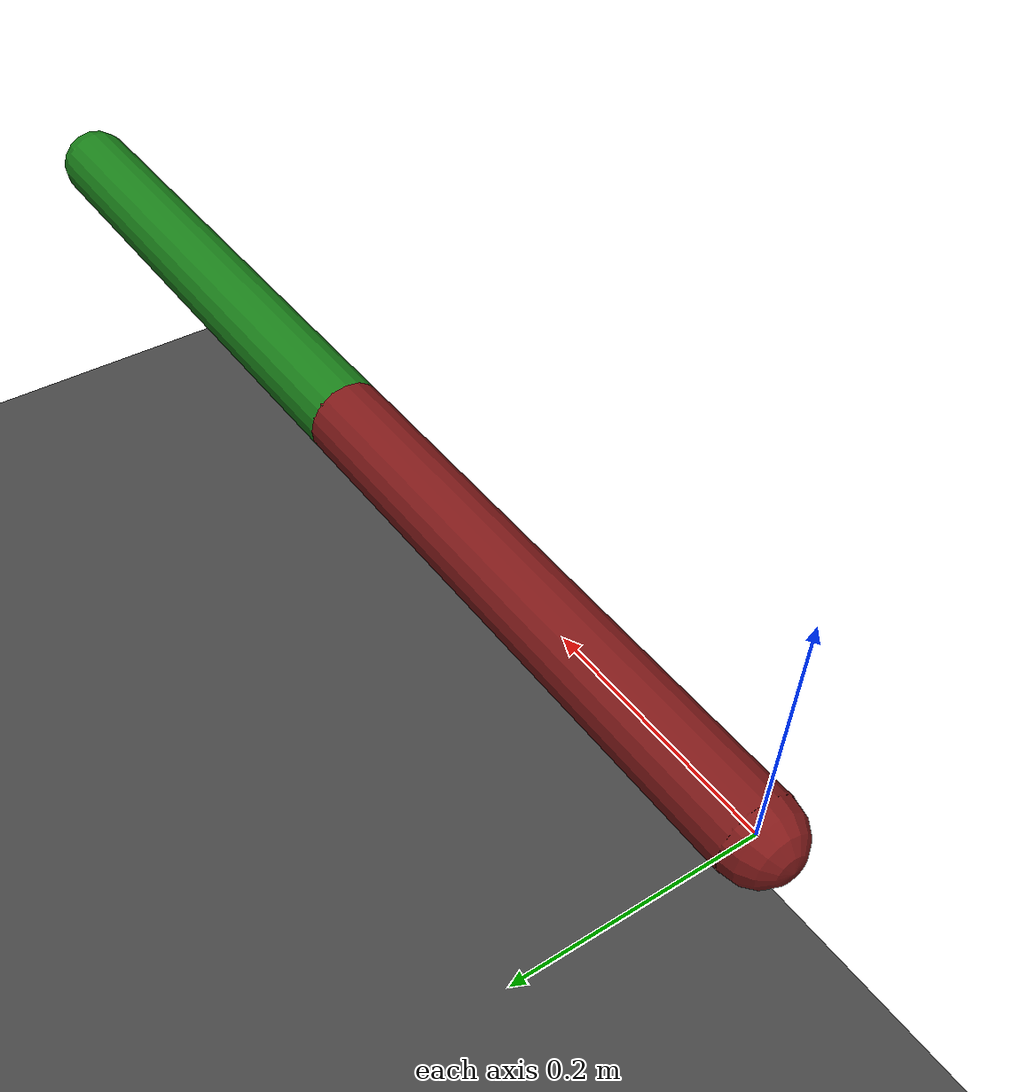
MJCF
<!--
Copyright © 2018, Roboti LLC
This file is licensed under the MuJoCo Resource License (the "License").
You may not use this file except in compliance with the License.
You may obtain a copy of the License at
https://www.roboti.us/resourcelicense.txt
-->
<mujoco model="plane arm">

    <option timestep="0.005" iterations="50" solver="Newton" tolerance="1e-10"/>

    <visual>
        <rgba haze=".3 .3 .3 1"/>
    </visual>

    <default>
        <joint type="hinge" pos="0 0 0" axis="0 0 1" damping="0.0"/>
    </default>

    <asset>
        <texture type="skybox" builtin="gradient" rgb1="0.6 0.6 0.6" rgb2="0 0 0" width="512" height="512"/>

        <texture name="texplane" type="2d" builtin="checker" rgb1=".25 .25 .25" rgb2=".3 .3 .3" width="512" height="512" mark="cross" markrgb=".8 .8 .8"/>

        <material name="matplane" reflectance="0.3" texture="texplane" texrepeat="1 1" texuniform="true"/>
    </asset>

    <worldbody>
        <geom name="floor" pos="0 0 -0.5" size="0 0 1" type="plane" material="matplane"/>

        <light directional="true" diffuse=".8 .8 .8" specular=".2 .2 .2" pos="0 0 5" dir="0 0 -1" />

        <body name="link0" pos="0 0 0">
            <geom name="link0" type="capsule" size="0.035" fromto="0 0 0  0.5 0 0" rgba=".5 .1 .1 1" group="1" contype="2" conaffinity="2"/>
            <joint name="joint0"/>

            <body name="link1" pos="0.5 0 0">
                <geom name="link1" type="capsule" size="0.035" fromto="0 0 0  0.5 0 0" rgba=".1 .5 .1 1" group="1" contype="4" conaffinity="4"/>
                <joint name="joint1"/>
                <site type='sphere' name='EE' size='.02' pos='0.5 0.0 0'/>
            </body>
        </body>
    </worldbody>

    <actuator>
        <motor name="joint0_motor" joint="joint0"/>
        <motor name="joint1_motor" joint="joint1"/>

    </actuator>
</mujoco>
